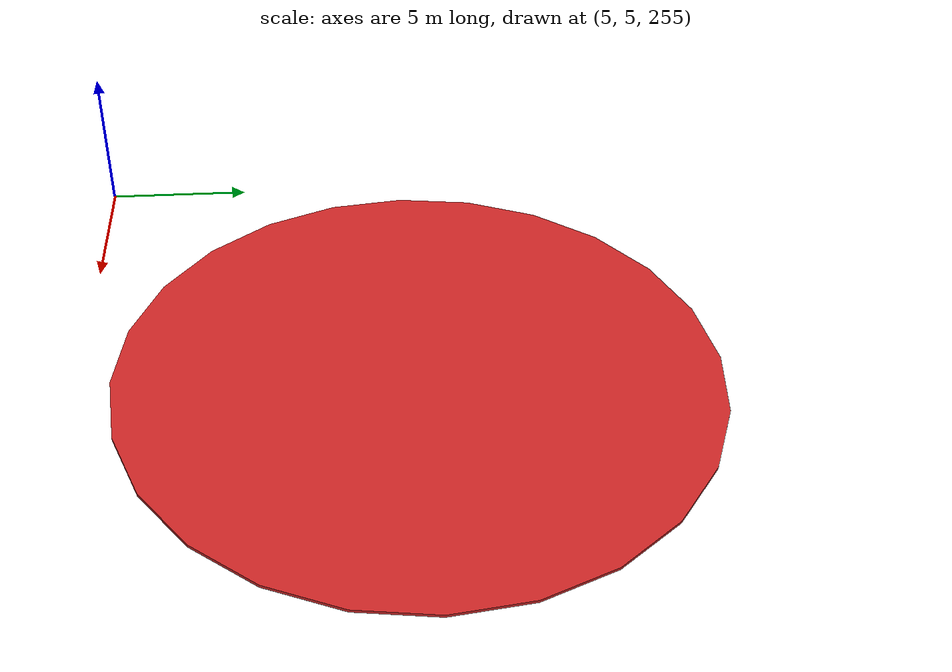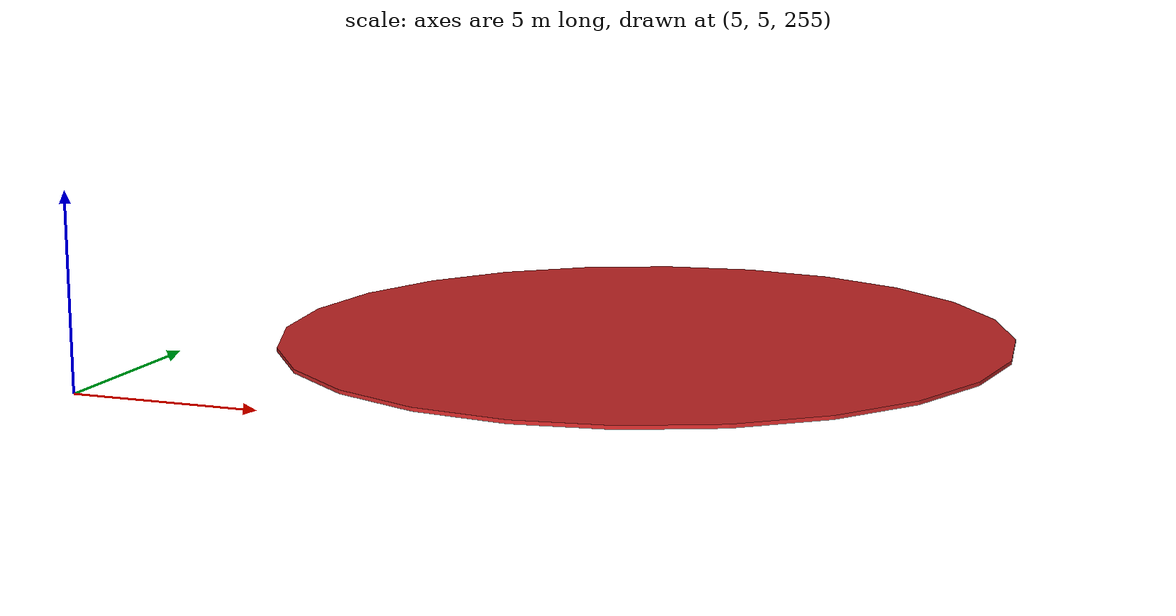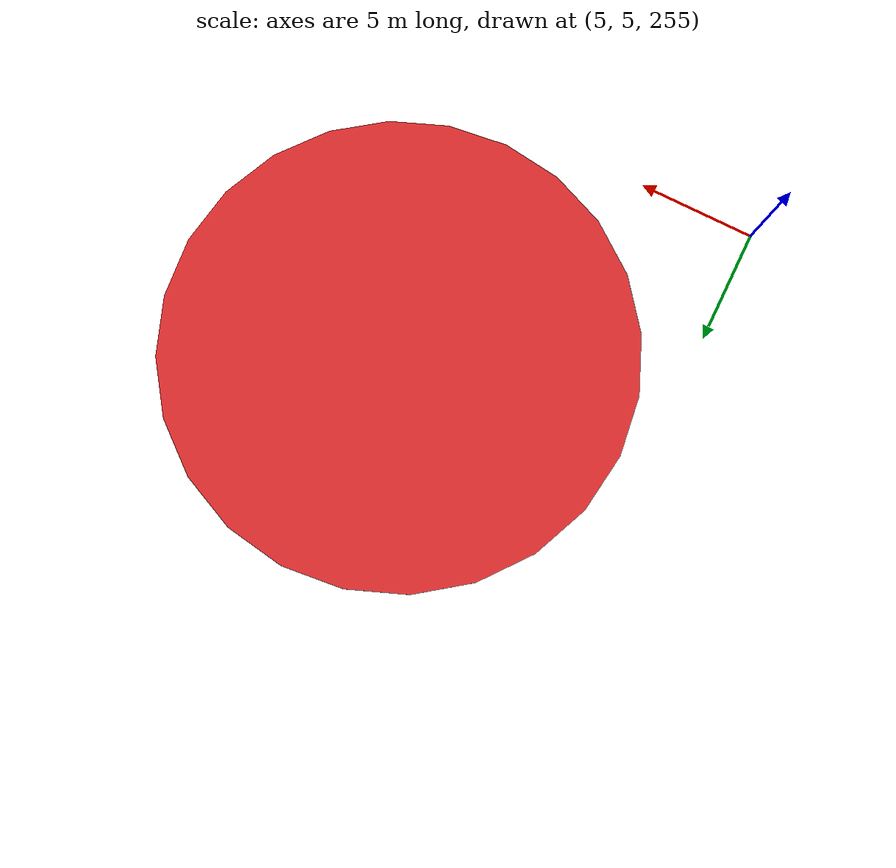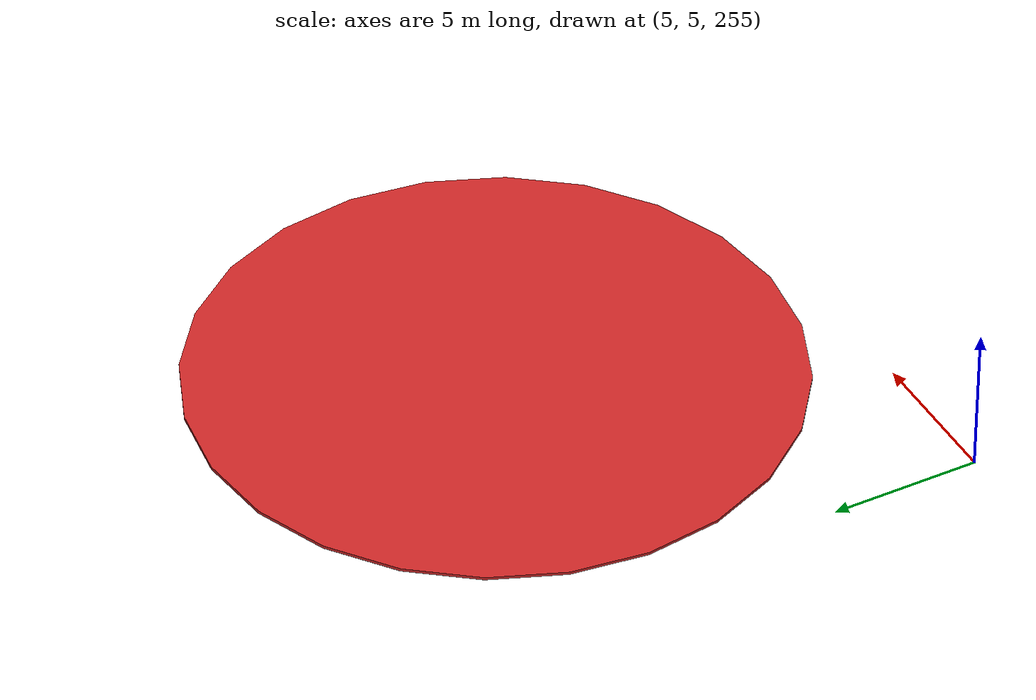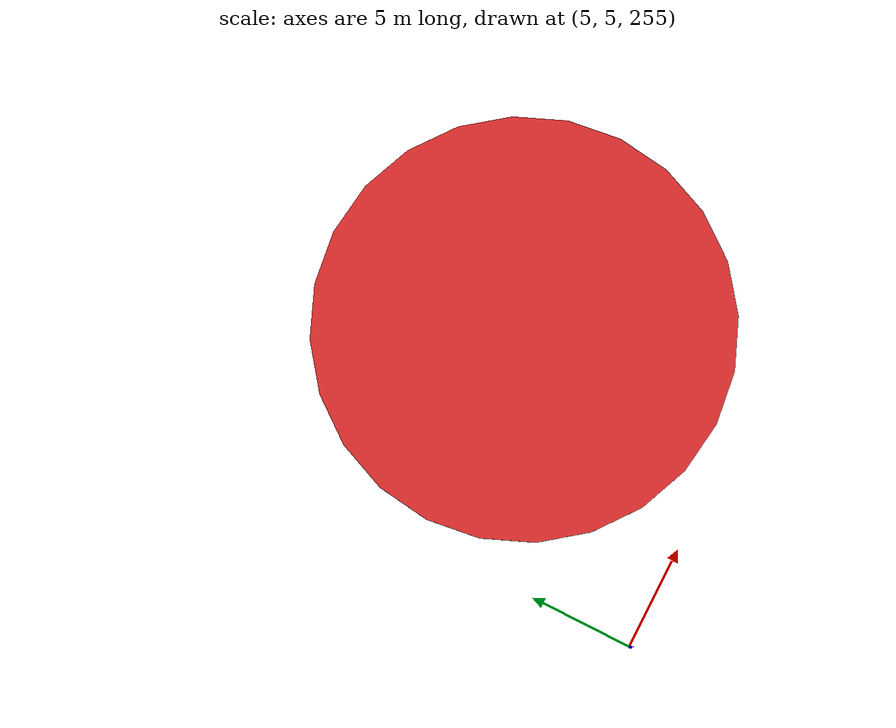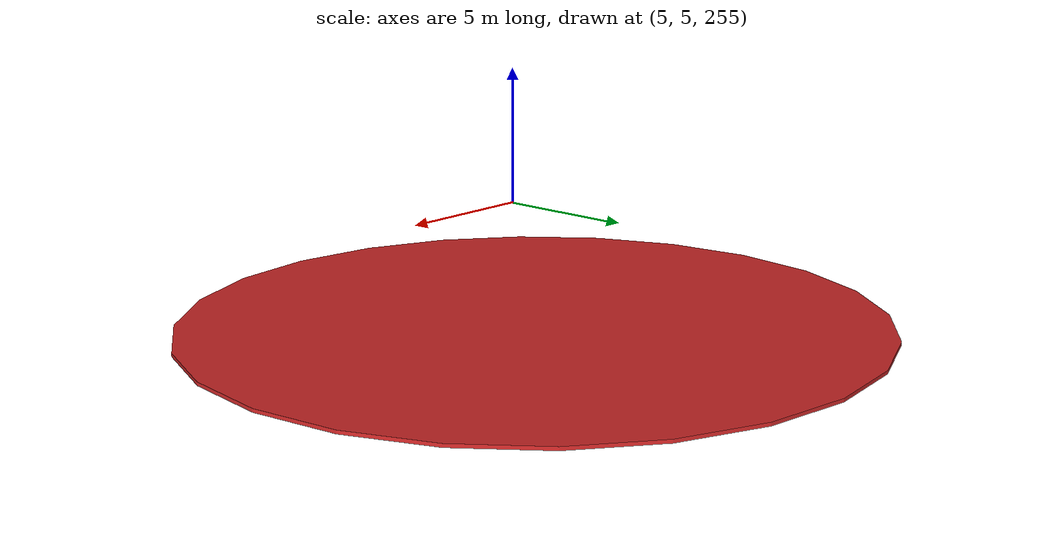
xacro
<?xml version="1.0"?>
<robot name="target">

    <material name="Red">
      <color rgba="0.8 0.0 0.0 1.0"/>
    </material>

    <link name="world"/>

    <gazebo reference="world"/>

    <link name="target">
        <inertial>
            <mass value="1"/>
            <origin xyz="0.00001 0.00001 1.5"/>
            <inertia ixx="0.009" ixy="0" ixz="0" iyy="0.009" iyz="0" izz="0.009"/>
        </inertial>
        <visual>
            <origin rpy="0.00001 0.00001 0.00001" xyz="8 8 250"/>
            <geometry>
                <cylinder length="0.1" radius="10"/>
            </geometry>
        </visual>
        <collision>
            <origin rpy="0 0 0" xyz="8 8 250"/>
            <geometry>
                <cylinder length="0.1" radius="10"/>
            </geometry>
        </collision>
    </link>

    <gazebo reference="target">
        <material>Gazebo/Red</material>
        <turnGravityOff>false</turnGravityOff>
    </gazebo>

    <joint name="world_target" type="fixed">
        <origin rpy="0 0 0" xyz="8 8 5"/>
        <parent link="world"/>
        <child link="target"/>
    </joint>

</robot>
